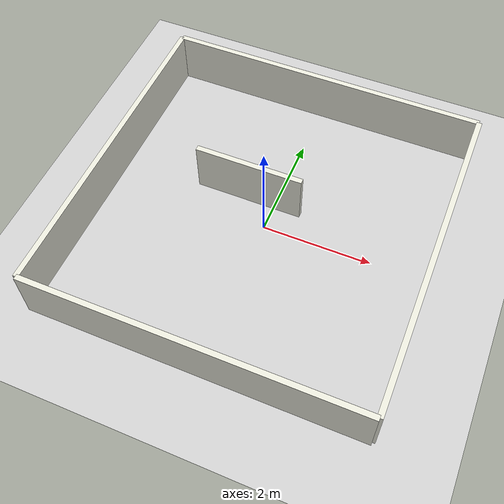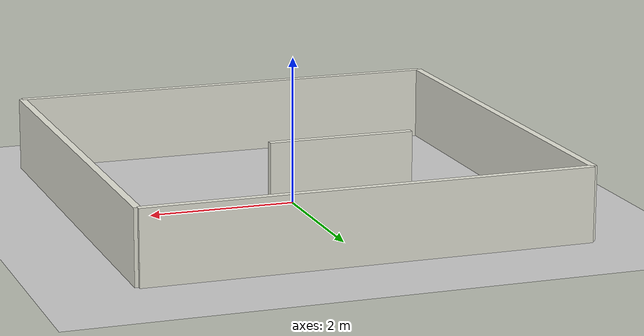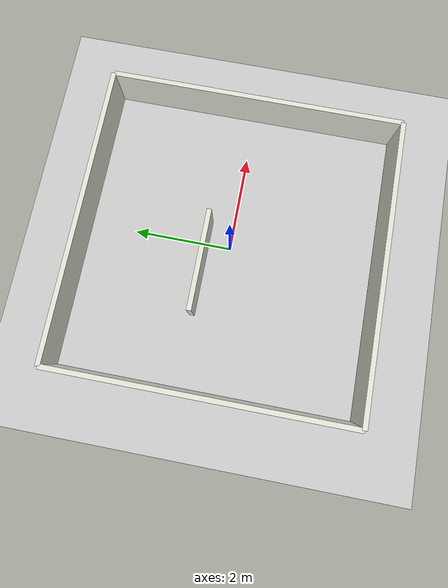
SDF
<sdf version="1.9">
 <world name="idefix_lab">
  <plugin filename="gz-sim-physics-system" name="gz::sim::systems::Physics"/>
  <plugin filename="gz-sim-user-commands-system" name="gz::sim::systems::UserCommands"/>
  <plugin filename="gz-sim-scene-broadcaster-system" name="gz::sim::systems::SceneBroadcaster"/>
  <plugin filename="gz-sim-sensors-system" name="gz::sim::systems::Sensors">
   <render_engine>ogre2</render_engine>
  </plugin>
  <plugin filename="gz-sim-imu-system" name="gz::sim::systems::Imu"/>
  <light type="directional" name="sun">
   <pose>0 0 10 0 0 0</pose>
   <diffuse>0.8 0.8 0.8 1</diffuse>
   <specular>0.2 0.2 0.2 1</specular>
   <direction>-0.5 0.1 -0.9</direction>
  </light>
  <model name="ground_plane">
   <static>true</static>
   <link name="link">
    <collision name="collision">
     <geometry><plane><normal>0 0 1</normal><size>100 100</size></plane></geometry>
    </collision>
    <visual name="visual">
     <geometry><plane><normal>0 0 1</normal><size>100 100</size></plane></geometry>
     <material>
      <ambient>0.8 0.8 0.8 1</ambient>
      <diffuse>0.8 0.8 0.8 1</diffuse>
      <specular>0.8 0.8 0.8 1</specular>
     </material>
    </visual>
   </link>
  </model>
  <model name="lab_room">
   <static>true</static>
   <link name="wall_north">
    <pose>0 3 0.5 0 0 0</pose>
    <visual name="v">
     <geometry><box><size>6 0.1 1</size></box></geometry>
     <material><ambient>0.9 0.9 0.85 1</ambient><diffuse>0.9 0.9 0.85 1</diffuse></material>
    </visual>
    <collision name="c"><geometry><box><size>6 0.1 1</size></box></geometry></collision>
   </link>
   <link name="wall_south">
    <pose>0 -3 0.5 0 0 0</pose>
    <visual name="v">
     <geometry><box><size>6 0.1 1</size></box></geometry>
     <material><ambient>0.9 0.9 0.85 1</ambient><diffuse>0.9 0.9 0.85 1</diffuse></material>
    </visual>
    <collision name="c"><geometry><box><size>6 0.1 1</size></box></geometry></collision>
   </link>
   <link name="wall_east">
    <pose>3 0 0.5 0 0 0</pose>
    <visual name="v">
     <geometry><box><size>0.1 6 1</size></box></geometry>
     <material><ambient>0.9 0.9 0.85 1</ambient><diffuse>0.9 0.9 0.85 1</diffuse></material>
    </visual>
    <collision name="c"><geometry><box><size>0.1 6 1</size></box></geometry></collision>
   </link>
   <link name="wall_west">
    <pose>-3 0 0.5 0 0 0</pose>
    <visual name="v">
     <geometry><box><size>0.1 6 1</size></box></geometry>
     <material><ambient>0.9 0.9 0.85 1</ambient><diffuse>0.9 0.9 0.85 1</diffuse></material>
    </visual>
    <collision name="c"><geometry><box><size>0.1 6 1</size></box></geometry></collision>
   </link>
   <link name="wall_partition">
    <pose>-0.5 0.5 0.5 0 0 0</pose>
    <visual name="v">
     <geometry><box><size>2 0.1 1</size></box></geometry>
     <material><ambient>0.9 0.9 0.85 1</ambient><diffuse>0.9 0.9 0.85 1</diffuse></material>
    </visual>
    <collision name="c"><geometry><box><size>2 0.1 1</size></box></geometry></collision>
   </link>
  </model>
 </world>
</sdf>
